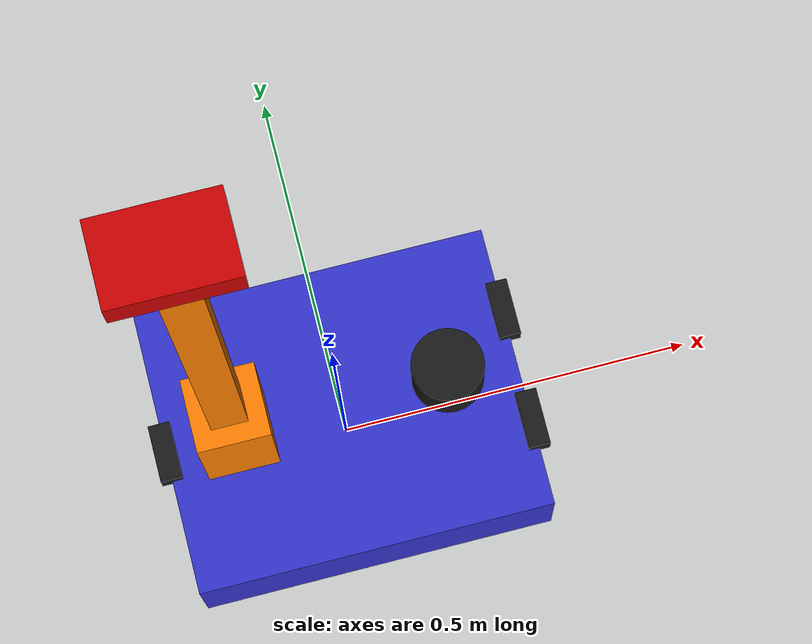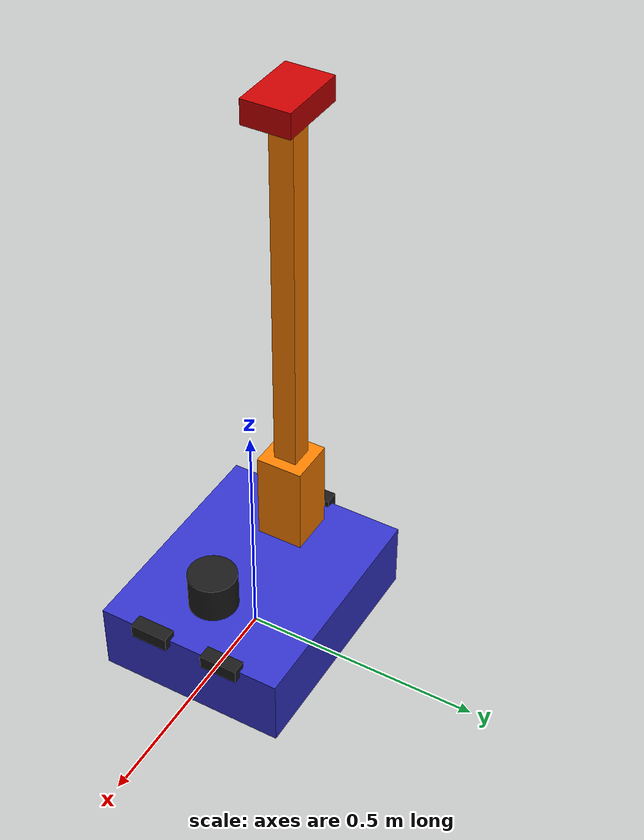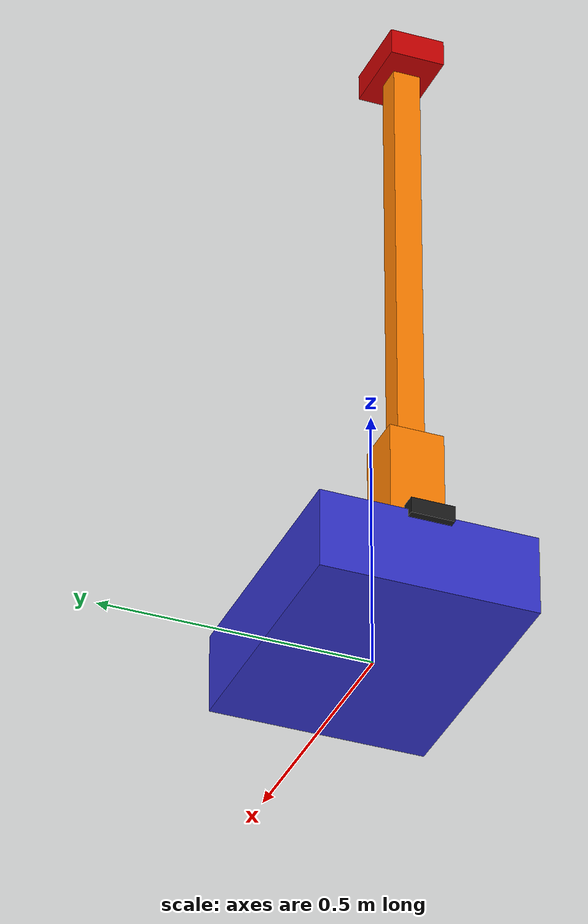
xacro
<?xml version="1.0"?>
<robot xmlns:xacro="http://www.ros.org/wiki/xacro" name="binbuddy">

  <!-- Properties -->
  <xacro:property name="wheel_base" value="0.35"/>
  <xacro:property name="wheel_radius" value="0.075"/>
  <xacro:property name="wheel_width" value="0.05"/>
  <xacro:property name="base_length" value="0.5"/>
  <xacro:property name="base_width" value="0.4"/>
  <xacro:property name="base_height" value="0.15"/>
  <xacro:property name="crane_height" value="0.8"/>

  <!-- Materials -->
  <material name="blue">
    <color rgba="0.2 0.2 0.8 1.0"/>
  </material>
  <material name="black">
    <color rgba="0.1 0.1 0.1 1.0"/>
  </material>
  <material name="orange">
    <color rgba="1.0 0.5 0.0 1.0"/>
  </material>
  <material name="red">
    <color rgba="0.8 0.0 0.0 1.0"/>
  </material>

  <!-- Base footprint (on ground) -->
  <link name="base_footprint"/>

  <!-- Base link -->
  <link name="base_link">
    <visual>
      <origin xyz="0 0 0" rpy="0 0 0"/>
      <geometry>
        <box size="${base_length} ${base_width} ${base_height}"/>
      </geometry>
      <material name="blue"/>
    </visual>
    <collision>
      <origin xyz="0 0 0" rpy="0 0 0"/>
      <geometry>
        <box size="${base_length} ${base_width} ${base_height}"/>
      </geometry>
    </collision>
    <inertial>
      <mass value="15.0"/>
      <inertia ixx="0.5" ixy="0.0" ixz="0.0"
               iyy="0.5" iyz="0.0" izz="0.5"/>
    </inertial>
  </link>

  <joint name="base_footprint_joint" type="fixed">
    <parent link="base_footprint"/>
    <child link="base_link"/>
    <origin xyz="0 0 ${wheel_radius}" rpy="0 0 0"/>
  </joint>

  <!-- LiDAR -->
  <link name="lidar_link">
    <visual>
      <origin xyz="0 0 0" rpy="0 0 0"/>
      <geometry>
        <cylinder radius="0.05" length="0.08"/>
      </geometry>
      <material name="black"/>
    </visual>
    <collision>
      <origin xyz="0 0 0" rpy="0 0 0"/>
      <geometry>
        <cylinder radius="0.05" length="0.08"/>
      </geometry>
    </collision>
    <inertial>
      <mass value="0.2"/>
      <inertia ixx="0.001" ixy="0.0" ixz="0.0"
               iyy="0.001" iyz="0.0" izz="0.001"/>
    </inertial>
  </link>

  <joint name="lidar_joint" type="fixed">
    <parent link="base_link"/>
    <child link="lidar_link"/>
    <origin xyz="0.15 0 ${base_height/2 + 0.08}" rpy="0 0 0"/>
  </joint>

  <!-- USB Camera (front center) -->
  <link name="camera_usb_link">
    <visual>
      <origin xyz="0 0 0" rpy="0 0 0"/>
      <geometry>
        <box size="0.03 0.08 0.03"/>
      </geometry>
      <material name="black"/>
    </visual>
  </link>

  <joint name="camera_usb_joint" type="fixed">
    <parent link="base_link"/>
    <child link="camera_usb_link"/>
    <origin xyz="0.25 -0.08 ${base_height/2}" rpy="0 0 0"/>
  </joint>

  <!-- USB Camera optical frame -->
  <link name="camera_usb_optical"/>
  <joint name="camera_usb_optical_joint" type="fixed">
    <parent link="camera_usb_link"/>
    <child link="camera_usb_optical"/>
    <origin xyz="0 0 0" rpy="${-pi/2} 0 ${-pi/2}"/>
  </joint>

  <!-- Pi Camera 1 (front right) -->
  <link name="camera_picam1_link">
    <visual>
      <origin xyz="0 0 0" rpy="0 0 0"/>
      <geometry>
        <box size="0.03 0.08 0.03"/>
      </geometry>
      <material name="black"/>
    </visual>
  </link>

  <joint name="camera_picam1_joint" type="fixed">
    <parent link="base_link"/>
    <child link="camera_picam1_link"/>
    <origin xyz="0.25 0.08 ${base_height/2}" rpy="0 0 0"/>
  </joint>

  <link name="camera_picam1_optical"/>
  <joint name="camera_picam1_optical_joint" type="fixed">
    <parent link="camera_picam1_link"/>
    <child link="camera_picam1_optical"/>
    <origin xyz="0 0 0" rpy="${-pi/2} 0 ${-pi/2}"/>
  </joint>

  <!-- Pi Camera 2 (rear center) -->
  <link name="camera_picam2_link">
    <visual>
      <origin xyz="0 0 0" rpy="0 0 0"/>
      <geometry>
        <box size="0.03 0.08 0.03"/>
      </geometry>
      <material name="black"/>
    </visual>
  </link>

  <joint name="camera_picam2_joint" type="fixed">
    <parent link="base_link"/>
    <child link="camera_picam2_link"/>
    <origin xyz="-0.25 0 ${base_height/2}" rpy="0 0 ${pi}"/>
  </joint>

  <link name="camera_picam2_optical"/>
  <joint name="camera_picam2_optical_joint" type="fixed">
    <parent link="camera_picam2_link"/>
    <child link="camera_picam2_optical"/>
    <origin xyz="0 0 0" rpy="${-pi/2} 0 ${-pi/2}"/>
  </joint>

  <!-- Crane base -->
  <link name="crane_base_link">
    <visual>
      <origin xyz="0 0 0" rpy="0 0 0"/>
      <geometry>
        <box size="0.1 0.1 0.2"/>
      </geometry>
      <material name="orange"/>
    </visual>
    <collision>
      <origin xyz="0 0 0" rpy="0 0 0"/>
      <geometry>
        <box size="0.1 0.1 0.2"/>
      </geometry>
    </collision>
    <inertial>
      <mass value="2.0"/>
      <inertia ixx="0.01" ixy="0.0" ixz="0.0"
               iyy="0.01" iyz="0.0" izz="0.01"/>
    </inertial>
  </link>

  <joint name="crane_base_joint" type="fixed">
    <parent link="base_link"/>
    <child link="crane_base_link"/>
    <origin xyz="-0.15 0 ${base_height/2 + 0.1}" rpy="0 0 0"/>
  </joint>

  <!-- Crane arm (prismatic joint for vertical movement) -->
  <link name="crane_arm_link">
    <visual>
      <origin xyz="0 0 ${crane_height/2}" rpy="0 0 0"/>
      <geometry>
        <box size="0.05 0.05 ${crane_height}"/>
      </geometry>
      <material name="orange"/>
    </visual>
    <collision>
      <origin xyz="0 0 ${crane_height/2}" rpy="0 0 0"/>
      <geometry>
        <box size="0.05 0.05 ${crane_height}"/>
      </geometry>
    </collision>
    <inertial>
      <mass value="1.5"/>
      <inertia ixx="0.05" ixy="0.0" ixz="0.0"
               iyy="0.05" iyz="0.0" izz="0.001"/>
    </inertial>
  </link>

  <joint name="crane_arm_joint" type="prismatic">
    <parent link="crane_base_link"/>
    <child link="crane_arm_link"/>
    <origin xyz="0 0 0.1" rpy="0 0 0"/>
    <axis xyz="0 0 1"/>
    <limit lower="0.0" upper="${crane_height}" effort="100.0" velocity="0.2"/>
  </joint>

  <!-- Crane gripper/hook -->
  <link name="crane_gripper_link">
    <visual>
      <origin xyz="0 0 0" rpy="0 0 0"/>
      <geometry>
        <box size="0.15 0.1 0.05"/>
      </geometry>
      <material name="red"/>
    </visual>
  </link>

  <joint name="crane_gripper_joint" type="fixed">
    <parent link="crane_arm_link"/>
    <child link="crane_gripper_link"/>
    <origin xyz="0 0 ${crane_height}" rpy="0 0 0"/>
  </joint>

</robot>
